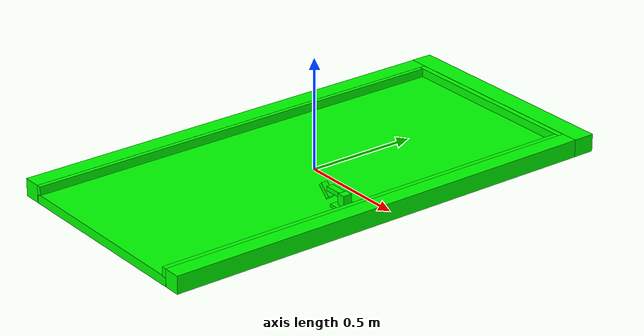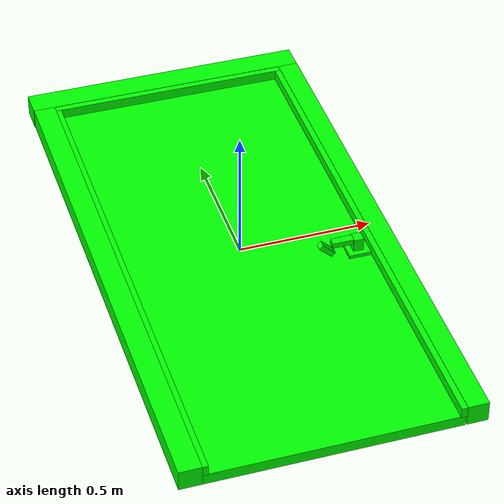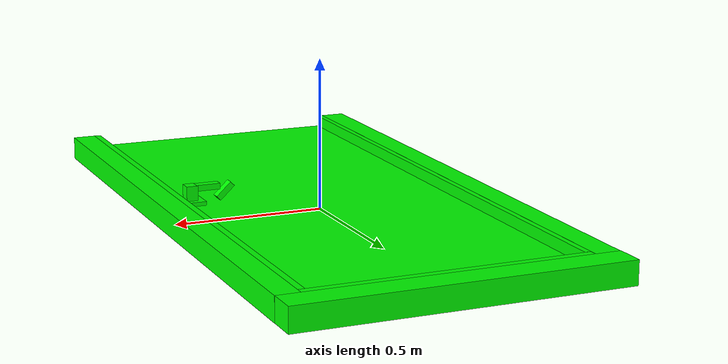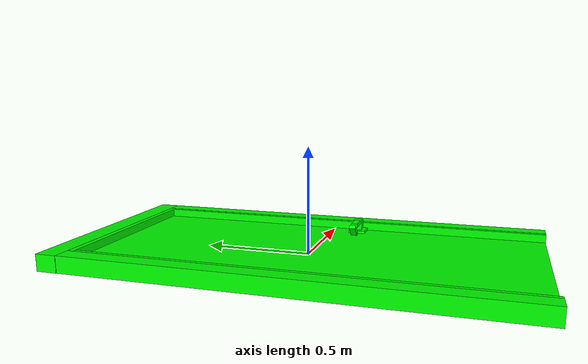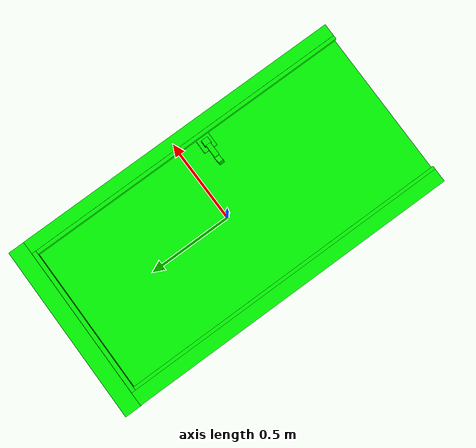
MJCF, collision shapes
<mujoco model="Doorway_1">
  <compiler angle="radian"/>

  <default>
    <default class="/">
      <default class="__VISUAL_MJT__">
        <geom contype="0" conaffinity="0"/>
      </default>
      <default class="__STRUCTURAL_MJT__">
        <geom contype="8" conaffinity="15" group="4" friction="0.9 0.9 0.001" solref="0.025" solimp="0.998 0.998"/>
      </default>
      <default class="__DYNAMIC_MJT__">
        <geom conaffinity="15" group="4" friction="0.9 0.9 0.001" solref="0.025" solimp="0.998 0.998"/>
      </default>
    </default>
  </default>

  <asset>
    <texture type="2d" name="TexturesCom_WoodFine0050_1_seamless_S_rich" file="TexturesCom_WoodFine0050_1_seamless_S.png"/>
    <texture type="2d" name="MediumWoodSmooth" file="WoodGrains1.png"/>
    <material name="material_TexturesCom_WoodFine0050_1_seamless_S_rich" class="/" texture="TexturesCom_WoodFine0050_1_seamless_S_rich" rgba="0.529412 0.307526 0.307526 1"/>
    <material name="material_BlackSmoothMeta" class="/" rgba="0.323529 0.323529 0.323529 1"/>
    <material name="material_MediumWoodSmooth" class="/" texture="MediumWoodSmooth" rgba="0.396226 0.230368 0.151388 1"/>
    <mesh name="Doorway_1_doorway_1" class="/" content_type="model/obj" file="Doorway_1_doorway_1/Doorway_1_doorway_1.obj"/>
    <mesh name="Doorway_1_doorway_door_1_0" class="/" content_type="model/obj" file="Doorway_1_doorway_door_1/Doorway_1_doorway_door_1_0.obj"/>
    <mesh name="Doorway_1_doorway_door_1_1" class="/" content_type="model/obj" file="Doorway_1_doorway_door_1/Doorway_1_doorway_door_1_1.obj"/>
    <mesh name="Doorway_1_doorway_handle_1" class="/" content_type="model/obj" file="Doorway_1_doorway_handle_1/Doorway_1_doorway_handle_1.obj"/>
  </asset>

  <worldbody>
    <body name="Doorway_1">
      <joint name="Doorway_1_free" class="/" type="free" limited="false" actuatorfrclimited="false" damping="0.1"/>
      <body name="Doorway_1_doorway_1" pos="0 -1.06572 0.00102" quat="0 0 -1 0">
        <geom name="Doorway_1_doorway_1" class="__VISUAL_MJT__" type="mesh" material="material_TexturesCom_WoodFine0050_1_seamless_S_rich" mesh="Doorway_1_doorway_1"/>
        <geom name="Doorway_1_doorway_1_PrimitiveCollider_0" class="__DYNAMIC_MJT__" size="0.0412624 1.016 0.0393335" pos="0.498736 1.01661 -0.0208311" type="box" rgba="0 1 0 1"/>
        <geom name="Doorway_1_doorway_1_PrimitiveCollider_1" class="__DYNAMIC_MJT__" size="0.0385463 1.016 0.0393335" pos="-0.500817 1.01661 -0.0208311" type="box" rgba="0 1 0 1"/>
        <geom name="Doorway_1_doorway_1_PrimitiveCollider_2" class="__DYNAMIC_MJT__" size="0.540429 0.0491732 0.0393335" pos="0.00170785 2.08166 -0.0208311" type="box" rgba="0 1 0 1"/>
        <geom name="Doorway_1_doorway_1_PrimitiveCollider_3" class="__DYNAMIC_MJT__" size="0.0101831 1.00281 0.0199884" pos="0.447716 1.00342 -0.0399562" type="box" rgba="0 1 0 1"/>
        <geom name="Doorway_1_doorway_1_PrimitiveCollider_4" class="__DYNAMIC_MJT__" size="0.0112413 1.00281 0.0200114" pos="-0.450867 1.00342 -0.0396897" type="box" rgba="0 1 0 1"/>
        <geom name="Doorway_1_doorway_1_PrimitiveCollider_5" class="__DYNAMIC_MJT__" size="0.459989 0.0129615 0.0198544" pos="-0.00185996 2.01893 -0.0398221" type="box" rgba="0 1 0 1"/>
        <body name="Doorway_1_doorway_door_1" pos="0.457629 1.016 0.00116137">
          <joint name="Doorway_1_doorway_door_1_joint_0" class="/" pos="0 0 0" axis="0 1 0" range="0 1.5708" damping="0.1" frictionloss="0.2"/>
          <geom name="Doorway_1_doorway_door_1_0" class="__VISUAL_MJT__" type="mesh" density="400" material="material_BlackSmoothMeta" mesh="Doorway_1_doorway_door_1_0"/>
          <geom name="Doorway_1_doorway_door_1_1" class="__VISUAL_MJT__" type="mesh" density="400" material="material_MediumWoodSmooth" mesh="Doorway_1_doorway_door_1_1"/>
          <geom name="Doorway_1_doorway_door_1_PrimitiveCollider_0" class="__DYNAMIC_MJT__" size="0.458676 1.01514 0.0209082" pos="-0.456095 0.0018158 -0.00124448" type="box" density="400" rgba="0 1 0 1"/>
          <body name="Doorway_1_doorway_handle_1" pos="-0.854 -0.100915 0">
            <joint name="Doorway_1_doorway_handle_1_joint_0" class="/" pos="0 0 0" axis="0 0 1" stiffness="2" range="-1.5708 0" armature="0.01" damping="0.01" frictionloss="0.5"/>
            <geom name="Doorway_1_doorway_handle_1" class="__VISUAL_MJT__" type="mesh" material="material_BlackSmoothMeta" mesh="Doorway_1_doorway_handle_1"/>
            <geom name="Doorway_1_doorway_handle_1_PrimitiveCollider_0" class="__DYNAMIC_MJT__" size="0.0192836 0.020423 0.0849767" pos="-0.000299931 0 8.20541e-05" type="box" rgba="0 1 0 1"/>
            <geom name="Doorway_1_doorway_handle_1_PrimitiveCollider_1" class="__DYNAMIC_MJT__" size="0.0412188 0.0413567 0.0361151" pos="-0.000299931 0 0.000702664" type="box" rgba="0 1 0 1"/>
            <geom name="Doorway_1_doorway_handle_1_PrimitiveCollider_2" class="__DYNAMIC_MJT__" size="0.0404847 0.015062 0.00988799" pos="0.0569131 0 0.0759014" type="box" rgba="0 1 0 1"/>
            <geom name="Doorway_1_doorway_handle_1_PrimitiveCollider_3" class="__DYNAMIC_MJT__" size="0.0334244 0.015062 0.00987982" pos="0.116718 0 0.0558728" quat="0.928913 0 -0.370299 0" type="box" rgba="0 1 0 1"/>
            <geom name="Doorway_1_doorway_handle_1_PrimitiveCollider_4" class="__DYNAMIC_MJT__" size="0.0404847 0.015062 0.00988799" pos="0.0569131 0 -0.0751786" quat="-2.95043e-06 1 0 0" type="box" rgba="0 1 0 1"/>
            <geom name="Doorway_1_doorway_handle_1_PrimitiveCollider_5" class="__DYNAMIC_MJT__" size="0.0334244 0.015062 0.00987982" pos="0.116718 0 -0.0561501" quat="-2.69711e-06 0.928913 1.07661e-06 -0.370299" type="box" rgba="0 1 0 1"/>
          </body>
        </body>
      </body>
    </body>
  </worldbody>

  <contact>
    <exclude name="//unnamed_contact_0" body1="Doorway_1_doorway_1" body2="Doorway_1_doorway_door_1"/>
    <exclude body1="Doorway_1_doorway_1" body2="Doorway_1_doorway_door_1"/>
    <exclude body1="Doorway_1_doorway_1" body2="Doorway_1_doorway_handle_1"/>
    <exclude name="//unnamed_contact_1" body1="Doorway_1_doorway_door_1" body2="Doorway_1_doorway_handle_1"/>
    <exclude body1="Doorway_1_doorway_door_1" body2="Doorway_1_doorway_handle_1"/>
  </contact>
</mujoco>
